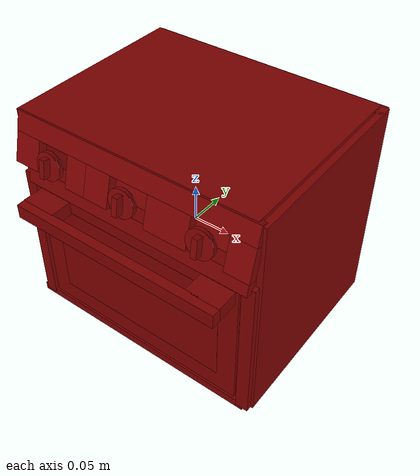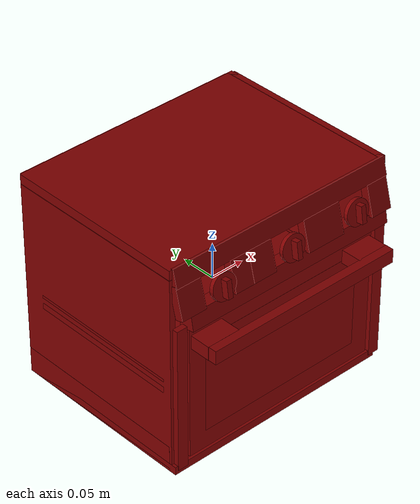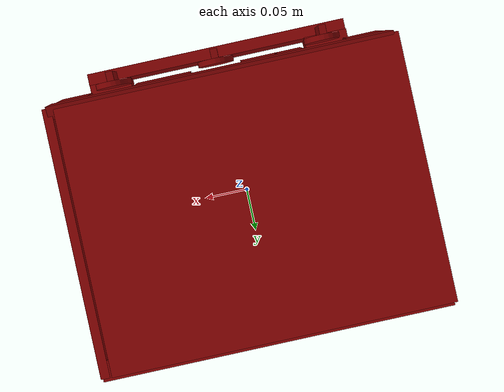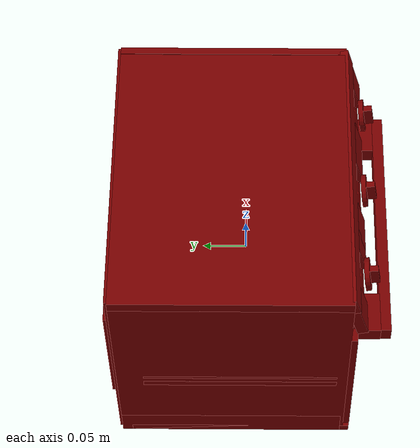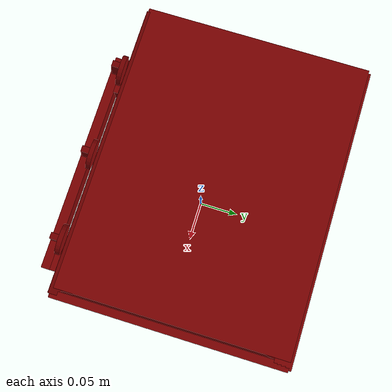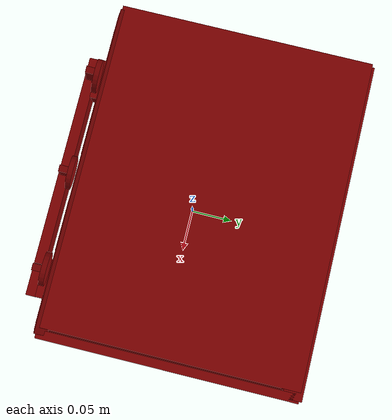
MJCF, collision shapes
<?xml version='1.0' encoding='UTF-8'?>
<mujoco model="model">
  <option timestep="0.002" gravity="0.0 0.0 -9.81"/>
  <compiler angle="radian"/>
  <asset>
    <mesh file="visuals/door.obj" name="door_vis"/>
    <mesh file="visuals/knob_function.obj" name="knob_function_vis"/>
    <mesh file="visuals/knob_temp.obj" name="knob_temp_vis"/>
    <mesh file="visuals/knob_time.obj" name="knob_time_vis"/>
    <mesh file="visuals/rack0.obj" name="rack0_vis"/>
    <mesh file="visuals/Body001.obj" name="Body001_vis"/>
    <mesh file="visuals/window.obj" name="window_vis"/>
    <texture file="visuals/T_BC001.png" name="Body001_material" type="2d"/>
    <material name="Body001_material" rgba="1 1 1 1.0" texture="Body001_material" shininess="0.5" specular="1"/>
    <texture file="visuals/T_BC001.png" name="door_material" type="2d"/>
    <material name="door_material" rgba="1 1 1 1.0" texture="door_material" shininess="0.5" specular="0.3103448502657381"/>
    <texture file="visuals/T_BC001.png" name="window_material" type="2d"/>
    <material name="window_material" rgba="1 1 1 0.800000011920929" texture="window_material" shininess="0.5" specular="0.3103448502657381"/>
    <texture file="visuals/T_BC001.png" name="knob_function_material" type="2d"/>
    <material name="knob_function_material" rgba="1 1 1 1.0" texture="knob_function_material" shininess="0.5" specular="0.3103448502657381"/>
    <texture file="visuals/T_BC001.png" name="knob_temp_material" type="2d"/>
    <material name="knob_temp_material" rgba="1 1 1 1.0" texture="knob_temp_material" shininess="0.5" specular="0.3103448502657381"/>
    <texture file="visuals/T_BC001.png" name="knob_time_material" type="2d"/>
    <material name="knob_time_material" rgba="1 1 1 1.0" texture="knob_time_material" shininess="0.5" specular="0.3103448502657381"/>
    <texture file="visuals/T_BC001.png" name="rack0_material" type="2d"/>
    <material name="rack0_material" rgba="1 1 1 1.0" texture="rack0_material" shininess="0.5" specular="0.3103448502657381"/>
  </asset>
  <default>
    <default class="visual">
      <geom conaffinity="0" contype="0" group="1" type="mesh"/>
    </default>
    <default class="collision">
      <geom group="0" rgba="0.5 0 0 0.5"/>
    </default>
    <default class="spawn">
      <geom group="0" rgba="1 1 1 0.5" contype="0" conaffinity="0"/>
      <site group="0" rgba="1 1 1 0.5"/>
    </default>
    <default class="region">
      <geom group="1" conaffinity="0" contype="0" rgba="0 1 0 0"/>
    </default>
  </default>
  <worldbody>
    <body>
      <body name="object">
        <geom mesh="Body001_vis" type="mesh" solimp="0.998 0.998 0.001" solref="0.001 1" friction="0.95 0.3 0.1" class="visual" material="Body001_material"/>
        <geom class="collision" type="box" pos="-0.16891319 0.01499438 0.00621202" size="0.0038919064681977034 0.13090583682060242 0.13815844058990479" quat="1.0 0.0 0.0 0.0"/>
        <geom class="collision" type="box" pos="-0.00555749 0.01499438 0.15170104" size="0.16727478802204132 0.13090680539608002 0.006663112435489893" quat="1.0 0.0 0.0 0.0"/>
        <geom class="collision" type="box" pos="0.16827333 0.01499438 0.01242967" size="0.004432488698512316 0.13090583682060242 0.14437608420848846" quat="1.0 0.0 0.0 0.0"/>
        <geom class="collision" type="box" pos="-0.00555751 0.01681735 -0.11864191" size="0.16727478802204132 0.12908285856246948 0.01834769733250141" quat="1.0 0.0 0.0 0.0"/>
        <geom class="collision" type="box" pos="-0.14608433 -0.08788597 -0.14741500" size="0.010431614704430103 0.015463012270629406 0.011218011379241943" quat="1.0 0.0 0.0 0.0"/>
        <geom class="collision" type="box" pos="-0.14608433 0.12249547 -0.14741500" size="0.010431614704430103 0.015463017858564854 0.011218011379241943" quat="1.0 0.0 0.0 0.0"/>
        <geom class="collision" type="box" pos="0.14666699 0.12249547 -0.14741500" size="0.011085348203778267 0.015463023446500301 0.011218011379241943" quat="1.0 0.0 0.0 0.0"/>
        <geom class="collision" type="box" pos="0.14666699 -0.08788597 -0.14741500" size="0.011085348203778267 0.015463029034435749 0.011218011379241943" quat="1.0 0.0 0.0 0.0"/>
        <geom class="collision" type="box" pos="0.00021135 0.13896281 0.01242966" size="0.17028066515922546 0.009832733310759068 0.14437608420848846" quat="1.0 0.0 0.0 0.0"/>
        <geom class="collision" type="box" pos="-0.00521749 0.15450249 -0.03588313" size="0.12342692911624908 0.00505033927038312 0.083826944231987" quat="1.0 0.0 0.0 0.0"/>
        <geom class="collision" type="box" pos="-0.00006080 -0.11437440 0.14529551" size="0.006241383962333202 0.012826248072087765 0.16841024160385132" quat="0.5609855651855469 0.4304593503475189 0.5609855055809021 0.4304593503475189"/>
        <geom class="collision" type="box" pos="0.00650881 -0.11937332 0.08043264" size="0.010909114964306355 0.011433557607233524 0.158296599984169" quat="0.5416747331619263 0.45451948046684265 0.5416757464408875 0.45451948046684265"/>
        <geom class="collision" type="box" pos="-0.15070212 -0.12190512 0.11441119" size="0.005977005697786808 0.021751808002591133 0.018408244475722313" quat="0.5609855651855469 0.43045932054519653 0.5609855055809021 0.43045932054519653"/>
        <geom class="collision" type="box" pos="-0.07262894 -0.12253021 0.11207840" size="0.005977005232125521 0.021751804277300835 0.01446085050702095" quat="0.5609855651855469 0.43045932054519653 0.5609855055809021 0.43045932054519653"/>
        <geom class="collision" type="box" pos="-0.04340004 -0.12253021 0.11207840" size="0.005977005232125521 0.021751804277300835 0.0203696358948946" quat="0.5609855651855469 0.43045932054519653 0.5609855055809021 0.43045932054519653"/>
        <geom class="collision" type="box" pos="0.05876817 -0.12253021 0.11207840" size="0.005977005232125521 0.021751804277300835 0.028824469074606895" quat="0.5609855651855469 0.43045932054519653 0.5609855055809021 0.43045932054519653"/>
        <geom class="collision" type="box" pos="0.15188469 -0.12253021 0.11207840" size="0.005977005232125521 0.021751804277300835 0.01602703519165516" quat="0.5609855651855469 0.43045932054519653 0.5609855055809021 0.43045932054519653"/>
        <geom class="collision" type="box" pos="-0.16104789 -0.11963302 -0.02858343" size="0.007894967682659626 0.003915607463568449 0.10336297750473022" quat="1.0 0.0 0.0 0.0"/>
        <geom class="collision" type="box" pos="0.16124029 -0.11963302 -0.02858343" size="0.008435550145804882 0.003915607463568449 0.10336297750473022" quat="1.0 0.0 0.0 0.0"/>
        <geom class="collision" type="box" pos="-0.00555751 0.00568374 -0.13124538" size="0.16727478802204132 0.12849017977714539 0.005744230933487415" quat="1.0 0.0 0.0 0.0"/>
        <geom class="collision" type="box" pos="-0.15772197 0.00581091 -0.01846208" size="0.015110325068235397 0.10961274057626724 0.0044046626426279545" quat="1.0 0.0 0.0 0.0"/>
        <geom class="collision" type="box" pos="-0.15772197 0.00581091 -0.00468005" size="0.015110325068235397 0.10961274057626724 0.0019725405145436525" quat="1.0 0.0 0.0 0.0"/>
        <geom class="collision" type="box" pos="0.15513459 0.00581091 -0.01846208" size="0.013338311575353146 0.10961274057626724 0.0044046626426279545" quat="1.0 0.0 0.0 0.0"/>
        <geom class="collision" type="box" pos="0.15513459 0.00581091 -0.00468005" size="0.013338311575353146 0.10961274057626724 0.0019725405145436525" quat="1.0 0.0 0.0 0.0"/>
        <body name="door">
          <joint axis="1.0 0.0 0.0" pos="0.00009997 -0.12295833 -0.12619342" limited="true" name="door_joint" range="0.0 1.4707963267948966" type="hinge" damping="1" frictionloss="1" armature=".01" stiffness="0.3" springref="-0.7"/>
          <geom mesh="door_vis" type="mesh" solimp="0.998 0.998 0.001" solref="0.001 1" friction="0.95 0.3 0.1" class="visual" material="door_material"/>
          <geom class="collision" type="box" pos="0.00000135 -0.11983650 -0.02840414" size="0.0016175289638340473 0.14851877093315125 0.09447996318340302" quat="0.7071067094802856 0.0 0.0 0.7071068286895752" name="door_main"/>
          <geom class="collision" type="box" pos="-0.00008233 -0.15589981 0.04737634" size="0.1449742466211319 0.006253184285014868 0.009570430964231491" quat="1.0 0.0 0.0 0.0" name="door_handle_main"/>
          <geom class="collision" type="box" pos="-0.12193197 -0.13566565 0.04754421" size="0.023826491087675095 0.014881391078233719 0.009450052864849567" quat="1.0 0.0 0.0 0.0"/>
          <geom class="collision" type="box" pos="0.12189576 -0.13513871 0.04737634" size="0.02284654788672924 0.016070043668150902 0.009570428170263767" quat="1.0 0.0 0.0 0.0"/>
          <body name="window">
            <geom mesh="window_vis" type="mesh" solimp="0.998 0.998 0.001" solref="0.001 1" friction="0.95 0.3 0.1" class="visual" material="window_material"/>
            <geom class="collision" type="box" pos="-0.00039806 -0.11970302 -0.02821617" size="0.12299686670303345 0.0019586021080613136 0.06883525848388672" quat="1.0 0.0 0.0 0.0"/>
          </body>
        </body>
        <body name="knob_function">
          <joint axis="-6.989816938585136e-07 0.9887882471084595 -0.14932483434677124" pos="0.00215857 -0.13593354 0.11523053" limited="true" name="knob_function_joint" range="0.0 5.410520681182422" type="hinge" damping="0.05" armature="1" frictionloss="0.75"/>
          <geom mesh="knob_function_vis" type="mesh" solimp="0.998 0.998 0.001" solref="0.001 1" friction="0.95 0.3 0.1" class="visual" material="knob_function_material"/>
          <geom class="collision" type="cylinder" pos="0.00219789 -0.13346044 0.11475038" size="0.018197722733020782 0.002672351198270917" quat="0.75629061460495 0.65423583984375 0.0 0.0" friction="100 0.5 0.01"/>
          <geom class="collision" type="box" pos="0.00209739 -0.14097521 0.11593596" size="0.0036245102528482676 0.0048958491533994675 0.012189720757305622" quat="0.9973000288009644 -0.07343461364507675 1.6305754811559705e-17 -1.5685111198164697e-25" name="knob_function_main" friction="100 0.5 0.01"/>
        </body>
        <body name="knob_temp">
          <joint axis="-3.225997033950989e-07 0.9887883067131042 -0.149323970079422" pos="-0.10811522 -0.13589888 0.11522525" limited="true" name="knob_temp_joint" range="0.0 4.71238898038469" type="hinge" damping="0.05" armature="1" frictionloss="0.75"/>
          <geom mesh="knob_temp_vis" type="mesh" solimp="0.998 0.998 0.001" solref="0.001 1" friction="0.95 0.3 0.1" class="visual" material="knob_temp_material"/>
          <geom class="collision" type="cylinder" pos="-0.10751441 -0.13357057 0.11476641" size="0.018197722733020782 0.002783649368211627" quat="0.75629061460495 0.65423583984375 0.0 0.0" friction="100 0.5 0.01"/>
          <geom class="collision" type="box" pos="-0.10819765 -0.14097521 0.11593596" size="0.0036245102528482676 0.0048958491533994675 0.012189720757305622" quat="0.9973000288009644 -0.07343461364507675 1.6305754811559705e-17 -1.5685111198164697e-25" name="knob_temp_main" friction="100 0.5 0.01"/>
        </body>
        <body name="knob_time">
          <joint axis="-7.152557373046875e-07 0.9887882471084595 -0.14932455122470856" pos="0.10807701 -0.13660993 0.11533268" limited="true" name="knob_time_joint" range="0.0 4.71238898038469" type="hinge" damping="0.05" armature="1" frictionloss="0.75"/>
          <geom mesh="knob_time_vis" type="mesh" solimp="0.998 0.998 0.001" solref="0.001 1" friction="0.95 0.3 0.1" class="visual" material="knob_time_material"/>
          <geom class="collision" type="cylinder" pos="0.10777509 -0.13352611 0.11475994" size="0.018197722733020782 0.00273871305398643" quat="0.75629061460495 0.65423583984375 0.0 0.0" friction="100 0.5 0.01"/>
          <geom class="collision" type="box" pos="0.10814830 -0.14097521 0.11593596" size="0.0036245102528482676 0.0048958491533994675 0.012189720757305622" quat="0.9973000288009644 -0.07343461364507675 1.6305754811559705e-17 -1.5685111198164697e-25" name="knob_time_main" friction="100 0.5 0.01"/>
        </body>
        <body name="rack0">
          <geom class="region" name="reg_rack0" type="box" pos="-0.0001328249999999892 0.011617955 0.02973324" size="0.142264815 0.100473555 0.0371603"/>
          <joint axis="0.0 -1.0 0.0" pos="-0.00049062 0.01378526 -0.01022142" limited="true" name="rack0_joint" range="0.0 0.2" type="slide" damping="1" frictionloss="1" armature=".01" stiffness="0.05"/>
          <geom mesh="rack0_vis" type="mesh" solimp="0.998 0.998 0.001" solref="0.001 1" friction="0.95 0.3 0.1" class="visual" material="rack0_material"/>
          <geom class="collision" type="box" pos="-0.00002500 0.01193642 -0.01029973" size="0.14156325161457062 0.09964592009782791 0.003719344502314925" quat="1.0 -8.146034247147327e-08 0.0 0.0"/>
        </body>
        <geom class="region" name="reg_main" type="box" pos="1.2500000000359446e-07 0.018626955 0.0" size="0.17547042499999999 0.143780245 0.16098322"/>
      </body>
    </body>
  </worldbody>
  <actuator>
    <motor name="door_joint_actuator" joint="door_joint" gear="50"/>
    <motor name="knob_function_joint_actuator" joint="knob_function_joint" gear="50"/>
    <motor name="knob_temp_joint_actuator" joint="knob_temp_joint" gear="50"/>
    <motor name="knob_time_joint_actuator" joint="knob_time_joint" gear="50"/>
    <motor name="rack0_joint_actuator" joint="rack0_joint" gear="50"/>
  </actuator>
</mujoco>
